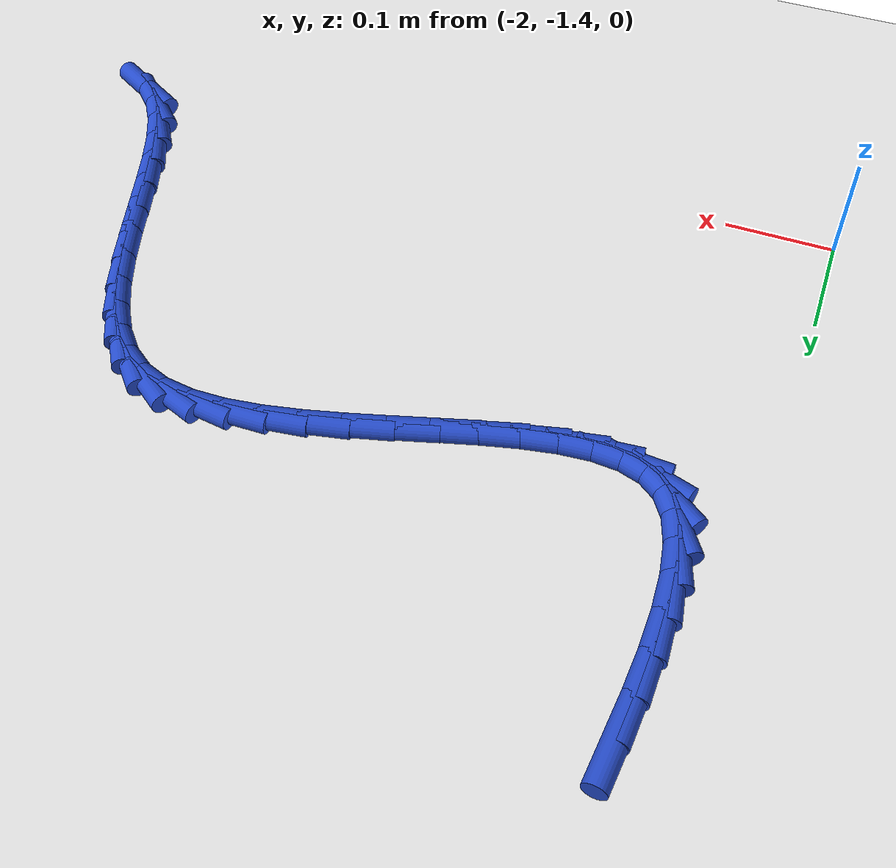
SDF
<sdf version="1.6">
 <world name="default">
  <model name="ground_plane">
   <static>1</static>
   <link name="link">
    <collision name="collision">
     <geometry><plane><normal>0 0 1</normal><size>100 100</size></plane></geometry>
     <surface><friction><ode><mu>100</mu><mu2>50</mu2></ode></friction></surface>
    </collision>
    <visual name="visual">
     <cast_shadows>0</cast_shadows>
     <geometry><plane><normal>0 0 1</normal><size>100 100</size></plane></geometry>
     <material>
      <script><uri>file://media/materials/scripts/gazebo.material</uri><name>Gazebo/WhiteGlow</name></script>
     </material>
    </visual>
   </link>
  </model>
  <model name="line">
   <link name="link_177">
    <pose>-1.9357762654511217 -0.8710212434178848 0.01 0 1.57 1.45989205023735</pose>
    <collision name="collision">
     <geometry><cylinder><radius>0.01</radius><length>0.08</length></cylinder></geometry>
    </collision>
    <visual name="visual">
     <material>
      <script><name>Gazebo/Blue</name><uri>file://media/materials/scripts/gazebo.material</uri></script>
     </material>
     <geometry><cylinder><radius>0.01</radius><length>0.08</length></cylinder></geometry>
    </visual>
   </link>
   <link name="link_178">
    <pose>-1.939638044646842 -0.9056991957311216 0.01 0 1.57 1.4909595912121527</pose>
    <collision name="collision">
     <geometry><cylinder><radius>0.01</radius><length>0.08</length></cylinder></geometry>
    </collision>
    <visual name="visual">
     <material>
      <script><name>Gazebo/Blue</name><uri>file://media/materials/scripts/gazebo.material</uri></script>
     </material>
     <geometry><cylinder><radius>0.01</radius><length>0.08</length></cylinder></geometry>
    </visual>
   </link>
   <link name="link_179">
    <pose>-1.9424219178557445 -0.9404946562409608 0.01 0 1.57 1.5389067930389226</pose>
    <collision name="collision">
     <geometry><cylinder><radius>0.01</radius><length>0.08</length></cylinder></geometry>
    </collision>
    <visual name="visual">
     <material>
      <script><name>Gazebo/Blue</name><uri>file://media/materials/scripts/gazebo.material</uri></script>
     </material>
     <geometry><cylinder><radius>0.01</radius><length>0.08</length></cylinder></geometry>
    </visual>
   </link>
   <link name="link_180">
    <pose>-1.9435000756817569 -0.9742923384112481 0.01 0 1.57 -1.5311959341053258</pose>
    <collision name="collision">
     <geometry><cylinder><radius>0.01</radius><length>0.08</length></cylinder></geometry>
    </collision>
    <visual name="visual">
     <material>
      <script><name>Gazebo/Blue</name><uri>file://media/materials/scripts/gazebo.material</uri></script>
     </material>
     <geometry><cylinder><radius>0.01</radius><length>0.08</length></cylinder></geometry>
    </visual>
   </link>
   <link name="link_181">
    <pose>-1.9422446974183887 -1.005976922456858 0.01 0 1.57 -1.423683352672457</pose>
    <collision name="collision">
     <geometry><cylinder><radius>0.01</radius><length>0.08</length></cylinder></geometry>
    </collision>
    <visual name="visual">
     <material>
      <script><name>Gazebo/Blue</name><uri>file://media/materials/scripts/gazebo.material</uri></script>
     </material>
     <geometry><cylinder><radius>0.01</radius><length>0.08</length></cylinder></geometry>
    </visual>
   </link>
   <link name="link_182">
    <pose>-1.938027962359151 -1.0344330885926618 0.01 0 1.57 -1.257713674059031</pose>
    <collision name="collision">
     <geometry><cylinder><radius>0.01</radius><length>0.08</length></cylinder></geometry>
    </collision>
    <visual name="visual">
     <material>
      <script><name>Gazebo/Blue</name><uri>file://media/materials/scripts/gazebo.material</uri></script>
     </material>
     <geometry><cylinder><radius>0.01</radius><length>0.08</length></cylinder></geometry>
    </visual>
   </link>
   <link name="link_183">
    <pose>-1.9302220497975544 -1.0585455170335347 0.01 0 1.57 -0.9982664606406394</pose>
    <collision name="collision">
     <geometry><cylinder><radius>0.01</radius><length>0.08</length></cylinder></geometry>
    </collision>
    <visual name="visual">
     <material>
      <script><name>Gazebo/Blue</name><uri>file://media/materials/scripts/gazebo.material</uri></script>
     </material>
     <geometry><cylinder><radius>0.01</radius><length>0.08</length></cylinder></geometry>
    </visual>
   </link>
   <link name="link_184">
    <pose>-1.918199139027109 -1.0771988879943502 0.01 0 1.57 -0.6390210810705766</pose>
    <collision name="collision">
     <geometry><cylinder><radius>0.01</radius><length>0.08</length></cylinder></geometry>
    </collision>
    <visual name="visual">
     <material>
      <script><name>Gazebo/Blue</name><uri>file://media/materials/scripts/gazebo.material</uri></script>
     </material>
     <geometry><cylinder><radius>0.01</radius><length>0.08</length></cylinder></geometry>
    </visual>
   </link>
   <link name="link_185">
    <pose>-1.9015225597668977 -1.089589975811018 0.01 0 1.57 -0.3064591551752543</pose>
    <collision name="collision">
     <geometry><cylinder><radius>0.01</radius><length>0.08</length></cylinder></geometry>
    </collision>
    <visual name="visual">
     <material>
      <script><name>Gazebo/Blue</name><uri>file://media/materials/scripts/gazebo.material</uri></script>
     </material>
     <geometry><cylinder><radius>0.01</radius><length>0.08</length></cylinder></geometry>
    </visual>
   </link>
   <link name="link_186">
    <pose>-1.880557059649807 -1.0962240416755058 0.01 0 1.57 -0.06978897442362757</pose>
    <collision name="collision">
     <geometry><cylinder><radius>0.01</radius><length>0.08</length></cylinder></geometry>
    </collision>
    <visual name="visual">
     <material>
      <script><name>Gazebo/Blue</name><uri>file://media/materials/scripts/gazebo.material</uri></script>
     </material>
     <geometry><cylinder><radius>0.01</radius><length>0.08</length></cylinder></geometry>
    </visual>
   </link>
   <link name="link_187">
    <pose>-1.8558773837321705 -1.0979492126724126 0.01 0 1.57 0.08376009607396948</pose>
    <collision name="collision">
     <geometry><cylinder><radius>0.01</radius><length>0.08</length></cylinder></geometry>
    </collision>
    <visual name="visual">
     <material>
      <script><name>Gazebo/Blue</name><uri>file://media/materials/scripts/gazebo.material</uri></script>
     </material>
     <geometry><cylinder><radius>0.01</radius><length>0.08</length></cylinder></geometry>
    </visual>
   </link>
   <link name="link_188">
    <pose>-1.828058277842048 -1.095613617146345 0.01 0 1.57 0.1806150891351754</pose>
    <collision name="collision">
     <geometry><cylinder><radius>0.01</radius><length>0.08</length></cylinder></geometry>
    </collision>
    <visual name="visual">
     <material>
      <script><name>Gazebo/Blue</name><uri>file://media/materials/scripts/gazebo.material</uri></script>
     </material>
     <geometry><cylinder><radius>0.01</radius><length>0.08</length></cylinder></geometry>
    </visual>
   </link>
   <link name="link_189">
    <pose>-1.7976744878075004 -1.090065383441913 0.01 0 1.57 0.23971878497368707</pose>
    <collision name="collision">
     <geometry><cylinder><radius>0.01</radius><length>0.08</length></cylinder></geometry>
    </collision>
    <visual name="visual">
     <material>
      <script><name>Gazebo/Blue</name><uri>file://media/materials/scripts/gazebo.material</uri></script>
     </material>
     <geometry><cylinder><radius>0.01</radius><length>0.08</length></cylinder></geometry>
    </visual>
   </link>
   <link name="link_190">
    <pose>-1.765300759456587 -1.0821526399037236 0.01 0 1.57 0.27213652066517835</pose>
    <collision name="collision">
     <geometry><cylinder><radius>0.01</radius><length>0.08</length></cylinder></geometry>
    </collision>
    <visual name="visual">
     <material>
      <script><name>Gazebo/Blue</name><uri>file://media/materials/scripts/gazebo.material</uri></script>
     </material>
     <geometry><cylinder><radius>0.01</radius><length>0.08</length></cylinder></geometry>
    </visual>
   </link>
   <link name="link_191">
    <pose>-1.7315118386173707 -1.0727235148763858 0.01 0 1.57 0.2837181528999187</pose>
    <collision name="collision">
     <geometry><cylinder><radius>0.01</radius><length>0.08</length></cylinder></geometry>
    </collision>
    <visual name="visual">
     <material>
      <script><name>Gazebo/Blue</name><uri>file://media/materials/scripts/gazebo.material</uri></script>
     </material>
     <geometry><cylinder><radius>0.01</radius><length>0.08</length></cylinder></geometry>
    </visual>
   </link>
   <link name="link_192">
    <pose>-1.6968824711179098 -1.0626261367045078 0.01 0 1.57 0.2769077053923883</pose>
    <collision name="collision">
     <geometry><cylinder><radius>0.01</radius><length>0.08</length></cylinder></geometry>
    </collision>
    <visual name="visual">
     <material>
      <script><name>Gazebo/Blue</name><uri>file://media/materials/scripts/gazebo.material</uri></script>
     </material>
     <geometry><cylinder><radius>0.01</radius><length>0.08</length></cylinder></geometry>
    </visual>
   </link>
   <link name="link_193">
    <pose>-1.6619874027862662 -1.0527086337326979 0.01 0 1.57 0.2515801474418432</pose>
    <collision name="collision">
     <geometry><cylinder><radius>0.01</radius><length>0.08</length></cylinder></geometry>
    </collision>
    <visual name="visual">
     <material>
      <script><name>Gazebo/Blue</name><uri>file://media/materials/scripts/gazebo.material</uri></script>
     </material>
     <geometry><cylinder><radius>0.01</radius><length>0.08</length></cylinder></geometry>
    </visual>
   </link>
   <link name="link_194">
    <pose>-1.6274013794504991 -1.043819134305564 0.01 0 1.57 0.20516984464375645</pose>
    <collision name="collision">
     <geometry><cylinder><radius>0.01</radius><length>0.08</length></cylinder></geometry>
    </collision>
    <visual name="visual">
     <material>
      <script><name>Gazebo/Blue</name><uri>file://media/materials/scripts/gazebo.material</uri></script>
     </material>
     <geometry><cylinder><radius>0.01</radius><length>0.08</length></cylinder></geometry>
    </visual>
   </link>
   <link name="link_195">
    <pose>-1.5936991469386692 -1.0368057667677149 0.01 0 1.57 0.1322452099742672</pose>
    <collision name="collision">
     <geometry><cylinder><radius>0.01</radius><length>0.08</length></cylinder></geometry>
    </collision>
    <visual name="visual">
     <material>
      <script><name>Gazebo/Blue</name><uri>file://media/materials/scripts/gazebo.material</uri></script>
     </material>
     <geometry><cylinder><radius>0.01</radius><length>0.08</length></cylinder></geometry>
    </visual>
   </link>
   <link name="link_196">
    <pose>-1.5614554510788372 -1.0325166594637585 0.01 0 1.57 0.023719778213332387</pose>
    <collision name="collision">
     <geometry><cylinder><radius>0.01</radius><length>0.08</length></cylinder></geometry>
    </collision>
    <visual name="visual">
     <material>
      <script><name>Gazebo/Blue</name><uri>file://media/materials/scripts/gazebo.material</uri></script>
     </material>
     <geometry><cylinder><radius>0.01</radius><length>0.08</length></cylinder></geometry>
    </visual>
   </link>
   <link name="link_197">
    <pose>-1.5312450376990632 -1.0317999407383032 0.01 0 1.57 -0.13338723825983756</pose>
    <collision name="collision">
     <geometry><cylinder><radius>0.01</radius><length>0.08</length></cylinder></geometry>
    </collision>
    <visual name="visual">
     <material>
      <script><name>Gazebo/Blue</name><uri>file://media/materials/scripts/gazebo.material</uri></script>
     </material>
     <geometry><cylinder><radius>0.01</radius><length>0.08</length></cylinder></geometry>
    </visual>
   </link>
   <link name="link_198">
    <pose>-1.5036426526274078 -1.0355037389359574 0.01 0 1.57 -0.3518555048207515</pose>
    <collision name="collision">
     <geometry><cylinder><radius>0.01</radius><length>0.08</length></cylinder></geometry>
    </collision>
    <visual name="visual">
     <material>
      <script><name>Gazebo/Blue</name><uri>file://media/materials/scripts/gazebo.material</uri></script>
     </material>
     <geometry><cylinder><radius>0.01</radius><length>0.08</length></cylinder></geometry>
    </visual>
   </link>
   <link name="link_199">
    <pose>-1.4792192799346697 -1.044470356852515 0.01 0 1.57 -0.6046789591536375</pose>
    <collision name="collision">
     <geometry><cylinder><radius>0.01</radius><length>0.08</length></cylinder></geometry>
    </collision>
    <visual name="visual">
     <material>
      <script><name>Gazebo/Blue</name><uri>file://media/materials/scripts/gazebo.material</uri></script>
     </material>
     <geometry><cylinder><radius>0.01</radius><length>0.08</length></cylinder></geometry>
    </visual>
   </link>
   <link name="link_200">
    <pose>-1.4581950179169954 -1.0589987070364435 0.01 0 1.57 -0.8220830032496133</pose>
    <collision name="collision">
     <geometry><cylinder><radius>0.01</radius><length>0.08</length></cylinder></geometry>
    </collision>
    <visual name="visual">
     <material>
      <script><name>Gazebo/Blue</name><uri>file://media/materials/scripts/gazebo.material</uri></script>
     </material>
     <geometry><cylinder><radius>0.01</radius><length>0.08</length></cylinder></geometry>
    </visual>
   </link>
   <link name="link_201">
    <pose>-1.4401584212902332 -1.0784096782829462 0.01 0 1.57 -0.9871753964476165</pose>
    <collision name="collision">
     <geometry><cylinder><radius>0.01</radius><length>0.08</length></cylinder></geometry>
    </collision>
    <visual name="visual">
     <material>
      <script><name>Gazebo/Blue</name><uri>file://media/materials/scripts/gazebo.material</uri></script>
     </material>
     <geometry><cylinder><radius>0.01</radius><length>0.08</length></cylinder></geometry>
    </visual>
   </link>
   <link name="link_202">
    <pose>-1.4246319989086722 -1.101921879159185 0.01 0 1.57 -1.1048341813873575</pose>
    <collision name="collision">
     <geometry><cylinder><radius>0.01</radius><length>0.08</length></cylinder></geometry>
    </collision>
    <visual name="visual">
     <material>
      <script><name>Gazebo/Blue</name><uri>file://media/materials/scripts/gazebo.material</uri></script>
     </material>
     <geometry><cylinder><radius>0.01</radius><length>0.08</length></cylinder></geometry>
    </visual>
   </link>
   <link name="link_203">
    <pose>-1.4111382596266024 -1.1287539182323225 0.01 0 1.57 -1.184715312757371</pose>
    <collision name="collision">
     <geometry><cylinder><radius>0.01</radius><length>0.08</length></cylinder></geometry>
    </collision>
    <visual name="visual">
     <material>
      <script><name>Gazebo/Blue</name><uri>file://media/materials/scripts/gazebo.material</uri></script>
     </material>
     <geometry><cylinder><radius>0.01</radius><length>0.08</length></cylinder></geometry>
    </visual>
   </link>
   <link name="link_204">
    <pose>-1.399199712298313 -1.1581244040695222 0.01 0 1.57 -1.2350889853047247</pose>
    <collision name="collision">
     <geometry><cylinder><radius>0.01</radius><length>0.08</length></cylinder></geometry>
    </collision>
    <visual name="visual">
     <material>
      <script><name>Gazebo/Blue</name><uri>file://media/materials/scripts/gazebo.material</uri></script>
     </material>
     <geometry><cylinder><radius>0.01</radius><length>0.08</length></cylinder></geometry>
    </visual>
   </link>
   <link name="link_205">
    <pose>-1.388338865778094 -1.1892519452379462 0.01 0 1.57 -1.2614434797444836</pose>
    <collision name="collision">
     <geometry><cylinder><radius>0.01</radius><length>0.08</length></cylinder></geometry>
    </collision>
    <visual name="visual">
     <material>
      <script><name>Gazebo/Blue</name><uri>file://media/materials/scripts/gazebo.material</uri></script>
     </material>
     <geometry><cylinder><radius>0.01</radius><length>0.08</length></cylinder></geometry>
    </visual>
   </link>
   <link name="link_206">
    <pose>-1.3780782289202347 -1.2213551503047577 0.01 0 1.57 -1.2666438464972274</pose>
    <collision name="collision">
     <geometry><cylinder><radius>0.01</radius><length>0.08</length></cylinder></geometry>
    </collision>
    <visual name="visual">
     <material>
      <script><name>Gazebo/Blue</name><uri>file://media/materials/scripts/gazebo.material</uri></script>
     </material>
     <geometry><cylinder><radius>0.01</radius><length>0.08</length></cylinder></geometry>
    </visual>
   </link>
   <link name="link_207">
    <pose>-1.3679403105790242 -1.2536526278371187 0.01 0 1.57 -1.250926833760113</pose>
    <collision name="collision">
     <geometry><cylinder><radius>0.01</radius><length>0.08</length></cylinder></geometry>
    </collision>
    <visual name="visual">
     <material>
      <script><name>Gazebo/Blue</name><uri>file://media/materials/scripts/gazebo.material</uri></script>
     </material>
     <geometry><cylinder><radius>0.01</radius><length>0.08</length></cylinder></geometry>
    </visual>
   </link>
   <link name="link_208">
    <pose>-1.3574407910670339 -1.2853498098810994 0.01 0 1.57 -1.2069879021356478</pose>
    <collision name="collision">
     <geometry><cylinder><radius>0.01</radius><length>0.08</length></cylinder></geometry>
    </collision>
    <visual name="visual">
     <material>
      <script><name>Gazebo/Blue</name><uri>file://media/materials/scripts/gazebo.material</uri></script>
     </material>
     <geometry><cylinder><radius>0.01</radius><length>0.08</length></cylinder></geometry>
    </visual>
   </link>
   <link name="link_209">
    <pose>-1.3459844491188697 -1.3154381300857854 0.01 0 1.57 -1.1233999883441417</pose>
    <collision name="collision">
     <geometry><cylinder><radius>0.01</radius><length>0.08</length></cylinder></geometry>
    </collision>
    <visual name="visual">
     <material>
      <script><name>Gazebo/Blue</name><uri>file://media/materials/scripts/gazebo.material</uri></script>
     </material>
     <geometry><cylinder><radius>0.01</radius><length>0.08</length></cylinder></geometry>
    </visual>
   </link>
   <link name="link_210">
    <pose>-1.3328859957292192 -1.3427352251866813 0.01 0 1.57 -0.9862812048703383</pose>
    <collision name="collision">
     <geometry><cylinder><radius>0.01</radius><length>0.08</length></cylinder></geometry>
    </collision>
    <visual name="visual">
     <material>
      <script><name>Gazebo/Blue</name><uri>file://media/materials/scripts/gazebo.material</uri></script>
     </material>
     <geometry><cylinder><radius>0.01</radius><length>0.08</length></cylinder></geometry>
    </visual>
   </link>
   <link name="link_211">
    <pose>-1.3174575367552175 -1.3660537049821615 0.01 0 1.57 -0.7775075768809812</pose>
    <collision name="collision">
     <geometry><cylinder><radius>0.01</radius><length>0.08</length></cylinder></geometry>
    </collision>
    <visual name="visual">
     <material>
      <script><name>Gazebo/Blue</name><uri>file://media/materials/scripts/gazebo.material</uri></script>
     </material>
     <geometry><cylinder><radius>0.01</radius><length>0.08</length></cylinder></geometry>
    </visual>
   </link>
   <link name="link_212">
    <pose>-1.2990133527375178 -1.384209090932882 0.01 0 1.57 -0.5135477021633337</pose>
    <collision name="collision">
     <geometry><cylinder><radius>0.01</radius><length>0.08</length></cylinder></geometry>
    </collision>
    <visual name="visual">
     <material>
      <script><name>Gazebo/Blue</name><uri>file://media/materials/scripts/gazebo.material</uri></script>
     </material>
     <geometry><cylinder><radius>0.01</radius><length>0.08</length></cylinder></geometry>
    </visual>
   </link>
  </model>
 </world>
</sdf>
